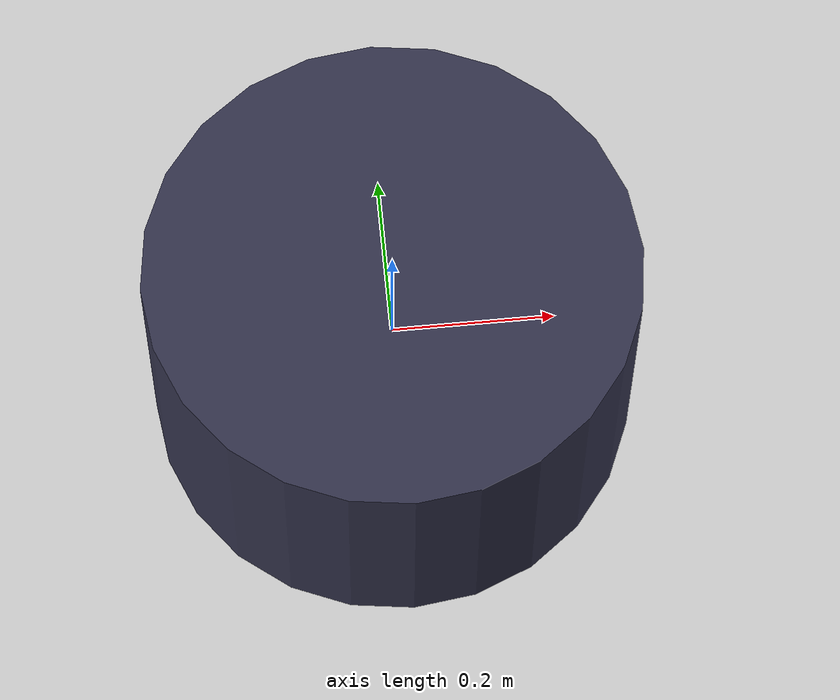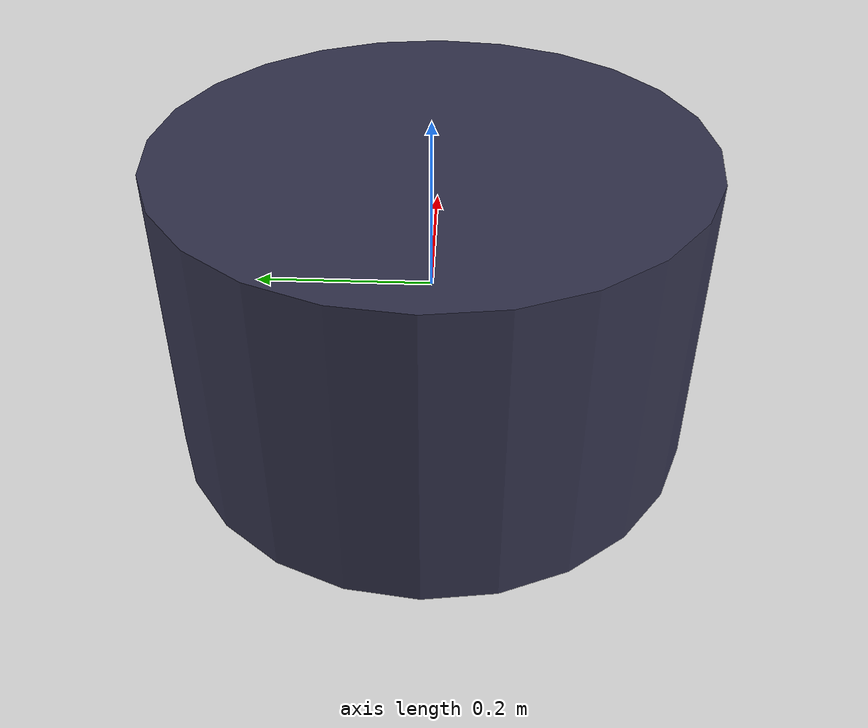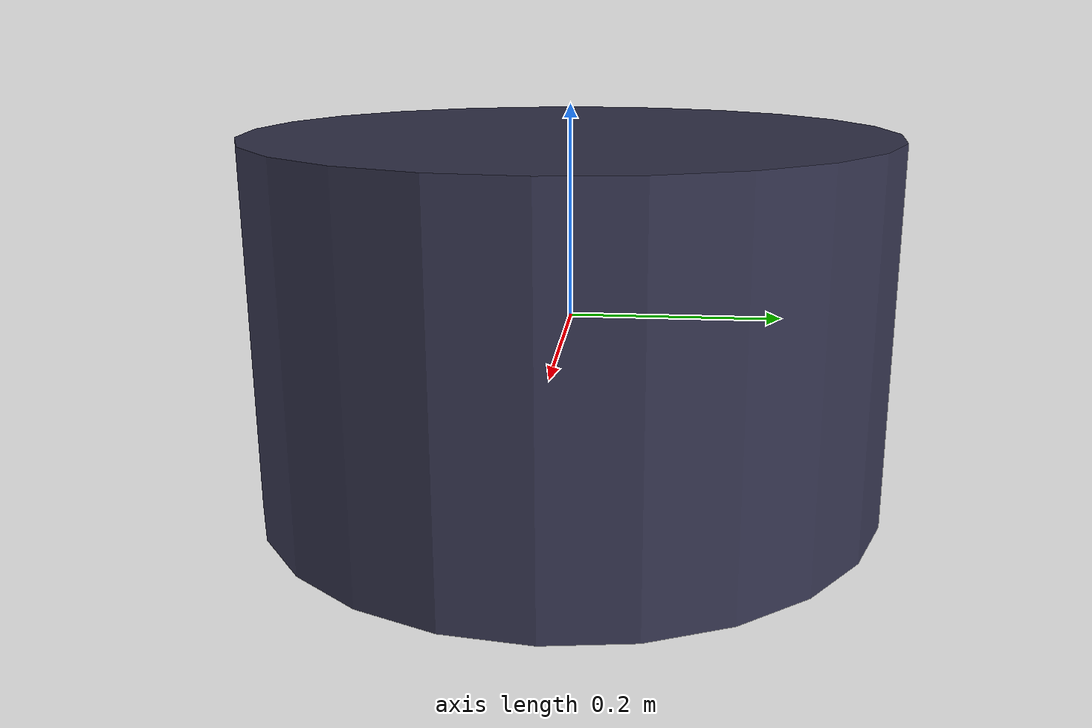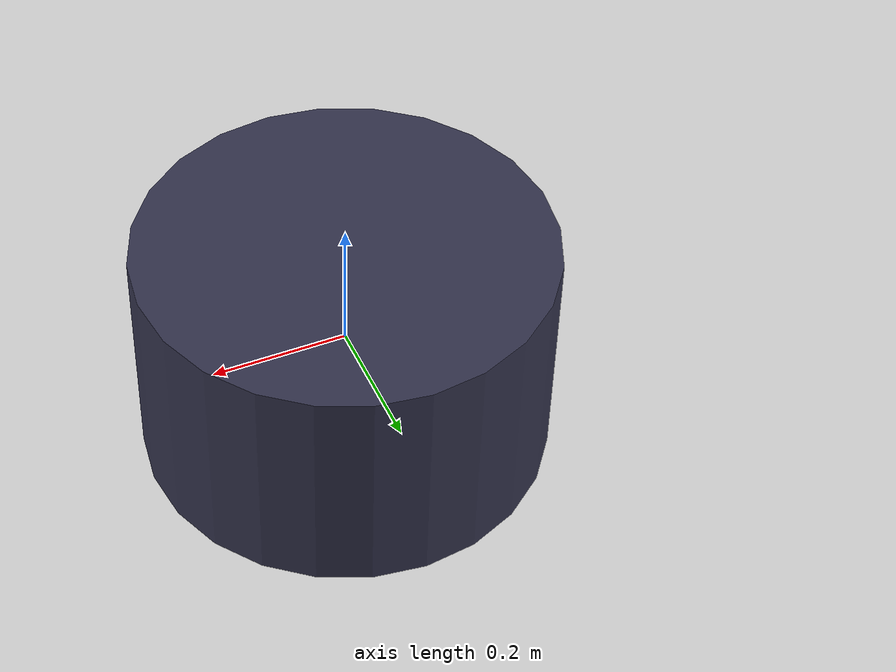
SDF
<?xml version="1.0"?>
<sdf version="1.4">
  <model name="cylinder-1">
    <pose frame=''>0 0 0 0 -0 0</pose>
    <static>0</static>
    <gravity>1</gravity>
    <self_collide>0</self_collide>
    <kinematic>0</kinematic>

    <link name="cylinder_link">
      <collision name="body_collision">
        <geometry>
            <cylinder>
                <radius>.3</radius>
                <length>.35</length>
            </cylinder>
        </geometry>
        <pose frame=''>0 0 0 0 -0 0</pose>
      </collision>

      <visual name="body_visual">
        <pose frame=''>0 0 0 0 -0 0</pose>
        <geometry>
            <cylinder>
                <radius>.3</radius>
                <length>.35</length>
            </cylinder>
        </geometry>
        <material>
          <ambient>0.5 0.5 0.5 1</ambient>
          <diffuse>0.2 0.2 0.3 1</diffuse>
          <specular>0 0 0 0</specular>
          <emissive>0 0 0 1</emissive>
        </material>
      </visual>

      <inertial>
        <mass>0.03</mass>
        <inertia>
          <ixx>0.000981</ixx>
          <ixy>0</ixy>
          <ixz>0</ixz>
          <iyy>0.000981</iyy>
          <iyz>0</iyz>
          <izz>0.00135</izz>
        </inertia>
      </inertial>
    </link>
  </model>
</sdf>
